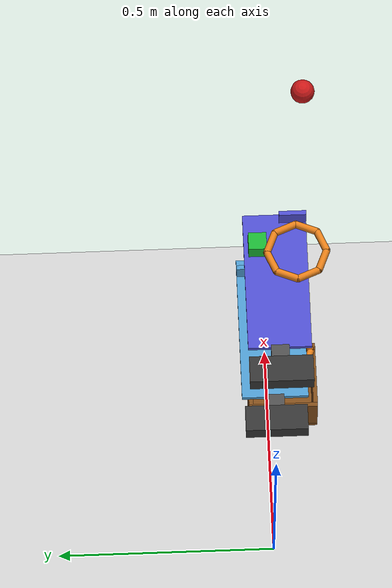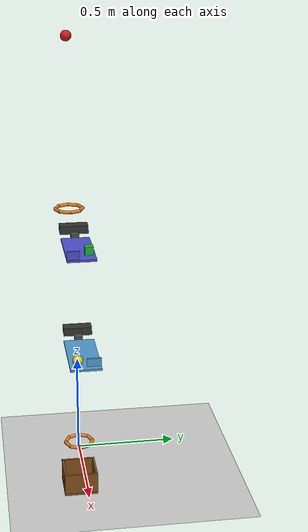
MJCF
<mujoco model="double_trapdoor_chain">
  <compiler angle="radian"/>
  <option timestep="0.002" gravity="0 0 -9.81"/>
  <worldbody>
    <light name="sun" pos="0 0 4" dir="0 0 -1" directional="true"/>
    <geom name="floor" type="plane" size="3 3 0.1" rgba="0.8 0.8 0.8 1"/>

    <body name="hoop1" pos="0.14 -0.04 1.35">
      <geom name="hoop1_s0" type="capsule" size="0.008" fromto="0.065 0 0 0.046 0.046 0" rgba="0.9 0.5 0.1 1"/>
      <geom name="hoop1_s1" type="capsule" size="0.008" fromto="0.046 0.046 0 0 0.065 0" rgba="0.9 0.5 0.1 1"/>
      <geom name="hoop1_s2" type="capsule" size="0.008" fromto="0 0.065 0 -0.046 0.046 0" rgba="0.9 0.5 0.1 1"/>
      <geom name="hoop1_s3" type="capsule" size="0.008" fromto="-0.046 0.046 0 -0.065 0 0" rgba="0.9 0.5 0.1 1"/>
      <geom name="hoop1_s4" type="capsule" size="0.008" fromto="-0.065 0 0 -0.046 -0.046 0" rgba="0.9 0.5 0.1 1"/>
      <geom name="hoop1_s5" type="capsule" size="0.008" fromto="-0.046 -0.046 0 0 -0.065 0" rgba="0.9 0.5 0.1 1"/>
      <geom name="hoop1_s6" type="capsule" size="0.008" fromto="0 -0.065 0 0.046 -0.046 0" rgba="0.9 0.5 0.1 1"/>
      <geom name="hoop1_s7" type="capsule" size="0.008" fromto="0.046 -0.046 0 0.065 0 0" rgba="0.9 0.5 0.1 1"/>
    </body>

    <body name="ball1" pos="0.14 -0.04 2.15">
      <freejoint name="ball1_free"/>
      <geom name="ball1_geom" type="sphere" size="0.025" mass="0.1" rgba="0.8 0.1 0.1 1"/>
    </body>

    <body name="flap1" pos="0 0 1.15">
      <joint name="flap1_hinge" type="hinge" axis="0 1 0" range="0 1.22" limited="true"/>
      <geom name="flap1_plate" type="box" pos="0.16 0 0" size="0.16 0.07 0.005" mass="0.03" rgba="0.3 0.3 0.8 1"/>
      <geom name="flap1_lip" type="box" pos="0.305 -0.04 0.025" size="0.005 0.03 0.02" mass="0.005" rgba="0.3 0.3 0.8 1"/>
      <geom name="flap1_arm" type="box" pos="-0.02 0 0.01" size="0.02 0.02 0.01" mass="0.002" rgba="0.3 0.3 0.3 1"/>
      <geom name="flap1_counterweight" type="box" pos="-0.07 0 0.03" size="0.03 0.07 0.02" mass="0.35" rgba="0.2 0.2 0.2 1"/>
    </body>

    <body name="block" pos="0.24 0.04 1.175">
      <freejoint name="block_free"/>
      <geom name="block_geom" type="box" size="0.02 0.02 0.02" mass="0.06" rgba="0.1 0.7 0.2 1"/>
    </body>

    <body name="flap2" pos="0.1 0 0.65">
      <joint name="flap2_hinge" type="hinge" axis="0 1 0" range="0 1.22" limited="true"/>
      <geom name="flap2_plate" type="box" pos="0.17 0 0" size="0.17 0.075 0.005" mass="0.03" rgba="0.3 0.6 0.8 1"/>
      <geom name="flap2_lip" type="box" pos="0.305 0.04 0.025" size="0.005 0.035 0.02" mass="0.004" rgba="0.3 0.6 0.8 1"/>
      <geom name="flap2_arm" type="box" pos="-0.02 0 0.01" size="0.02 0.02 0.01" mass="0.002" rgba="0.3 0.3 0.3 1"/>
      <geom name="flap2_counterweight" type="box" pos="-0.07 0 0.03" size="0.03 0.07 0.02" mass="0.34" rgba="0.2 0.2 0.2 1"/>
    </body>

    <body name="ball2" pos="0.39 -0.035 0.68">
      <freejoint name="ball2_free"/>
      <geom name="ball2_geom" type="sphere" size="0.025" mass="0.05" condim="6" friction="1 0.01 0.002" rgba="0.9 0.8 0.1 1"/>
    </body>

    <body name="hoop2" pos="0.39 -0.035 0.25">
      <geom name="hoop2_s0" type="capsule" size="0.008" fromto="0.065 0 0 0.046 0.046 0" rgba="0.9 0.5 0.1 1"/>
      <geom name="hoop2_s1" type="capsule" size="0.008" fromto="0.046 0.046 0 0 0.065 0" rgba="0.9 0.5 0.1 1"/>
      <geom name="hoop2_s2" type="capsule" size="0.008" fromto="0 0.065 0 -0.046 0.046 0" rgba="0.9 0.5 0.1 1"/>
      <geom name="hoop2_s3" type="capsule" size="0.008" fromto="-0.046 0.046 0 -0.065 0 0" rgba="0.9 0.5 0.1 1"/>
      <geom name="hoop2_s4" type="capsule" size="0.008" fromto="-0.065 0 0 -0.046 -0.046 0" rgba="0.9 0.5 0.1 1"/>
      <geom name="hoop2_s5" type="capsule" size="0.008" fromto="-0.046 -0.046 0 0 -0.065 0" rgba="0.9 0.5 0.1 1"/>
      <geom name="hoop2_s6" type="capsule" size="0.008" fromto="0 -0.065 0 0.046 -0.046 0" rgba="0.9 0.5 0.1 1"/>
      <geom name="hoop2_s7" type="capsule" size="0.008" fromto="0.046 -0.046 0 0.065 0 0" rgba="0.9 0.5 0.1 1"/>
    </body>

    <body name="cup" pos="0.39 -0.035 0">
      <geom name="cup_base" type="box" pos="0 0 0.005" size="0.08 0.08 0.005" rgba="0.5 0.3 0.1 1"/>
      <geom name="cup_wall_px" type="box" pos="0.075 0 0.06" size="0.005 0.08 0.05" rgba="0.5 0.3 0.1 1"/>
      <geom name="cup_wall_nx" type="box" pos="-0.075 0 0.06" size="0.005 0.08 0.05" rgba="0.5 0.3 0.1 1"/>
      <geom name="cup_wall_py" type="box" pos="0 0.075 0.06" size="0.07 0.005 0.05" rgba="0.5 0.3 0.1 1"/>
      <geom name="cup_wall_ny" type="box" pos="0 -0.075 0.06" size="0.07 0.005 0.05" rgba="0.5 0.3 0.1 1"/>
    </body>
  </worldbody>
</mujoco>
